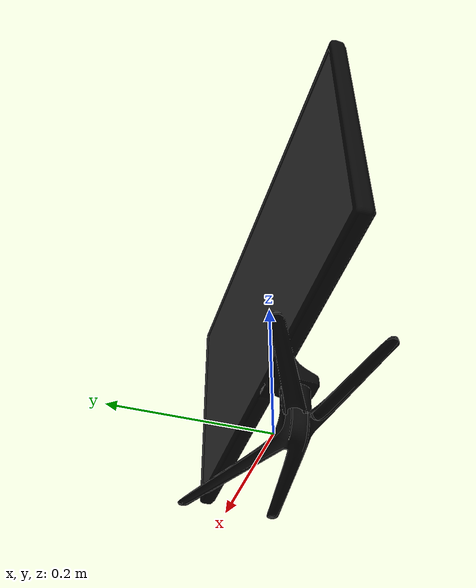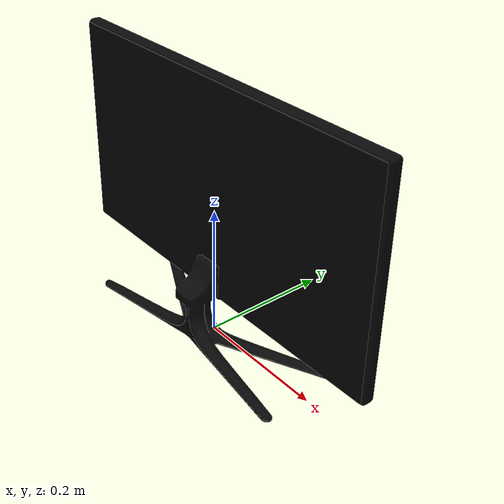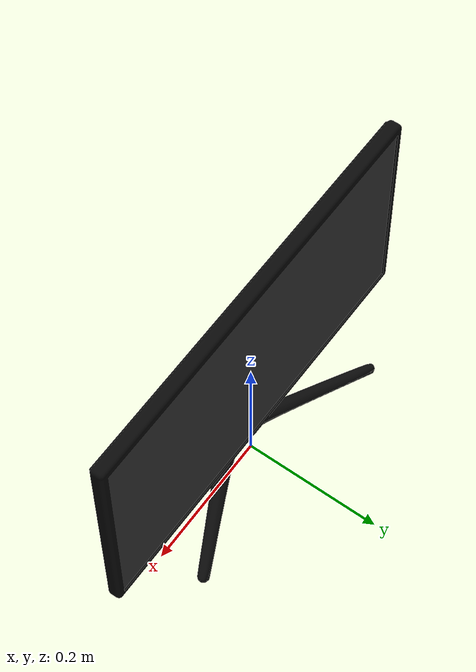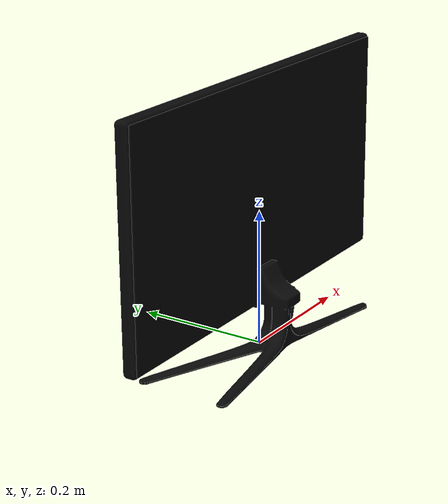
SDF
<?xml version="1.0" ?>
<sdf version="1.0">
  <model name="tv">
    <static>true</static>
    <link name="tv">
      <collision name="tv_upper">
        <pose>0 0 0.26 0 0 0</pose>
        <geometry>
          <box>
            <size>0.5820 0.0320 0.2800</size>
          </box>
        </geometry>
      </collision>

      <collision name="tv_lower">
        <pose>0 0 0.06 0 0 0</pose>
        <geometry>
          <box>
            <size>0.5800 0.1600 0.1200</size>
          </box>
        </geometry>
      </collision>

      <visual name="tv_mesh">
	  <cast_shadows>true</cast_shadows>
        <geometry>
          <mesh>
	        <uri>model://tv/meshes/model.dae</uri>
	      </mesh>
        </geometry>
      </visual>
    </link>
  </model>
</sdf>
